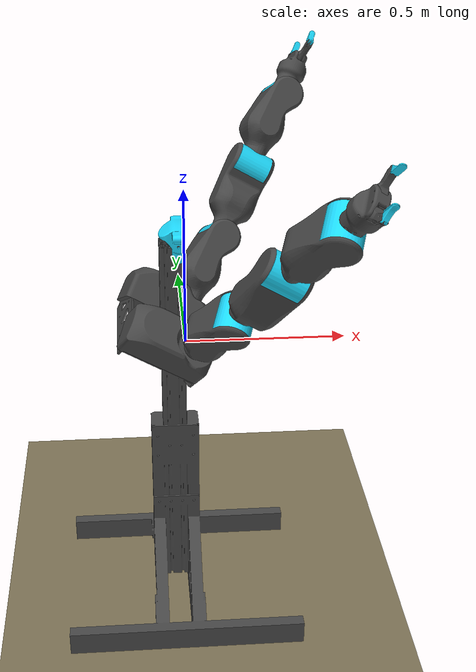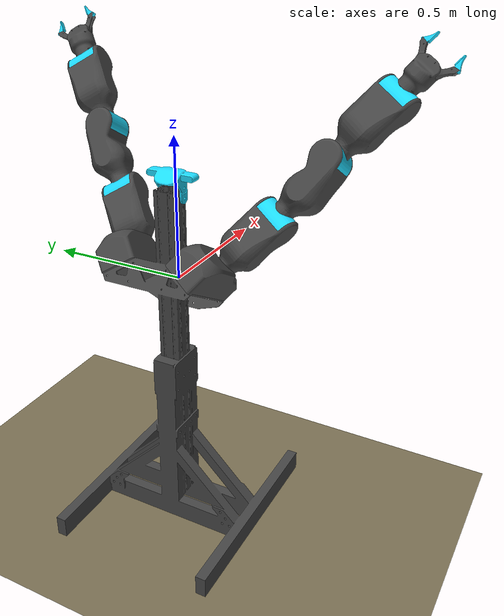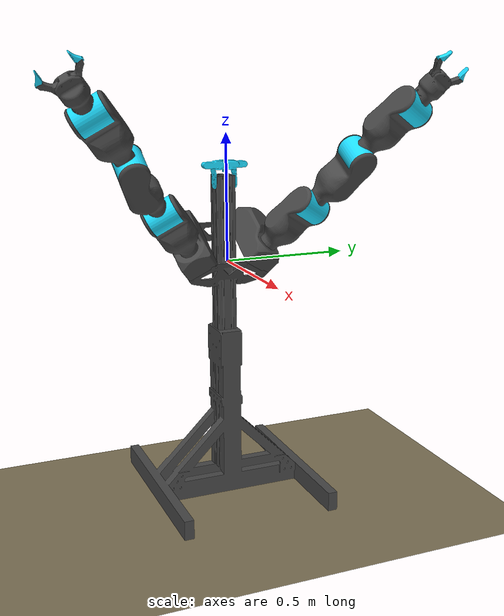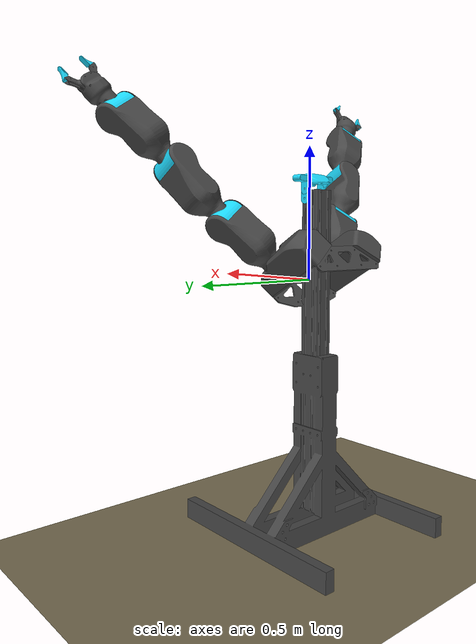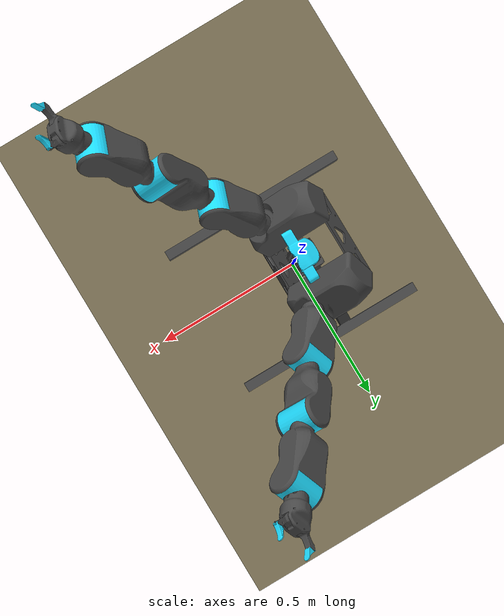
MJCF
<mujoco model="blue_full">
    <compiler angle="radian" meshdir="../../robot/meshes_blue_v2/"/>
    <option timestep="0.05" gravity="0 0 0" />
    <size njmax="500" nconmax="100" />

    <default>
        <joint armature="0.04" damping="1" limited="true" />
        <geom friction=".5 .1 .1" margin="0.002" condim="1" contype="0" conaffinity="0" />
    </default>

    <asset>
        <mesh name="robot_base_link" file="robot_base_link.STL" />
        <mesh name="arm_base_link_v2" file="arm_base_link_v2.STL" />
        <mesh name="roll_link_v2" file="roll_link_v2.STL" />
        <mesh name="lift_link_v2" file="lift_link_v2.STL" />
        <mesh name="hand_base_link" file="hand_base_link.STL" />
        <mesh name="finger_limb_link" file="finger_limb_link.STL" />
        <mesh name="finger_tip_link" file="finger_tip_link.STL" />
        <mesh name="camera_link" file="camera_link.STL" />

        <texture name="skybox" type="skybox" builtin="gradient" rgb1=".4 .6 .8" rgb2="0 0 0" width="1024" height="1024" mark="random" markrgb="1 1 1"/>
        <texture name="texplane" type="2d" builtin="checker" rgb1="0.5961 0.5647 0.4784" rgb2="0.3843 0.32941 0.19215" width="512" height="512" mark="cross" markrgb=".8 .8 .8"/>
        <material name="matplane" reflectance="0.3" texture="texplane" texrepeat="1 1" texuniform="true"/>
    </asset>

    <worldbody>
        <light directional="true" diffuse=".8 .8 .8" specular="0.1 0.1 0.1" pos="0 0 2.5" dir="0 0 -1" castshadow="false"/>
        <geom name="ground" type="plane" size="6 6 1" pos="0 0 -1." quat="1 0 0 0" material="matplane" condim="1"/>
        <body name="base_link" pos="0 0 0">
            <inertial pos="-0.0340721 -5.82248e-06 -0.701353" quat="0.999916 3.15548e-05 -0.0129229 -1.90294e-05" mass="16.2842" diaginertia="2.15017 1.86083 0.792594" />
            <geom type="mesh" rgba="0.2784 0.2784 0.2784 1" mesh="robot_base_link" />

            <body name="left_base_link" pos="-0.01409 0.11289 0" quat="-0.0778325 0.246839 0.290463 0.921219">
                <inertial pos="0.107964 -0.000118075 0.0740607" quat="-0.00144458 0.606987 0.000927747 0.79471" mass="3.45161" diaginertia="0.0175534 0.0157386 0.00730286" />
                <geom type="mesh" rgba="0.2784 0.2784 0.2784 1" mesh="arm_base_link_v2" />
                <body name="left_shoulder_roll_link" pos="0 0 0.083499" quat="0 1 0 0">
                    <inertial pos="0.00796478 6.88165e-07 -0.101495" quat="0.712797 -0.021542 -0.0203263 0.700745" mass="2.21396" diaginertia="0.00680774 0.00679994 0.00633497" />
                    <joint name="left_base_roll_joint" pos="0 0 0" axis="0 0 1" limited="true" range="-2.3412 3.3999" />
                    <geom type="mesh" rgba="0.2784 0.2784 0.2784 1" mesh="roll_link_v2" />
                    <body name="left_shoulder_lift_link" pos="-0.012 0 -0.232779" quat="0.707107 -0.707107 0 0">
                        <inertial pos="-1.3238e-05 0.00162984 3.71222e-05" quat="0.714714 -0.00266942 -0.00304239 0.699405" mass="0.415577" diaginertia="0.000846898 0.000835923 0.000571351" />
                        <joint name="left_shoulder_lift_joint" pos="0 0 0" axis="0 0 -1" limited="true" range="-2.2944 0" />
                        <geom type="mesh" rgba="0.116747 0.862745 1 1" mesh="lift_link_v2" />
                        <body name="left_elbow_roll_link" pos="0 0.0359532 0" quat="0.500704 0.500704 -0.499295 0.499295">
                            <inertial pos="0.00796478 6.88165e-07 -0.101495" quat="0.712797 -0.021542 -0.0203263 0.700745" mass="2.21396" diaginertia="0.00680774 0.00679994 0.00633497" />
                            <joint name="left_shoulder_roll_joint" pos="0 0 0" axis="0 0 1" limited="true" range="-2.6761 2.6761" />
                            <geom type="mesh" rgba="0.2784 0.2784 0.2784 1" mesh="roll_link_v2" />
                            <body name="left_elbow_lift_link" pos="-0.012 0 -0.232779" quat="0.707107 -0.707107 0 0">
                                <inertial pos="-1.3238e-05 0.00162984 3.71222e-05" quat="0.714714 -0.00266942 -0.00304239 0.699405" mass="0.415577" diaginertia="0.000846898 0.000835923 0.000571351" />
                                <joint name="left_elbow_lift_joint" pos="0 0 0" axis="0 0 -1" limited="true" range="-2.2944 0" />
                                <geom type="mesh" rgba="0.116747 0.862745 1 1" mesh="lift_link_v2" />
                                <body name="left_wrist_roll_link" pos="0 0.0359532 0" quat="0.500704 0.500704 0.499295 -0.499295">
                                    <inertial pos="0.00796478 6.88165e-07 -0.101495" quat="0.712797 -0.021542 -0.0203263 0.700745" mass="1.71368" diaginertia="0.00680774 0.00679994 0.00633497" />
                                    <joint name="left_elbow_roll_joint" pos="0 0 0" axis="0 0 1" limited="true" range="-2.6761 2.6761" />
                                    <geom type="mesh" rgba="0.2784 0.2784 0.2784 1" mesh="roll_link_v2" />
                                    <body name="left_wrist_lift_link" pos="-0.012 0 -0.232779" quat="0.707107 -0.707107 0 0">
                                        <inertial pos="-1.3238e-05 0.00162984 3.71222e-05" quat="0.714714 -0.00266942 -0.00304239 0.699405" mass="0.415577" diaginertia="0.000846898 0.000835923 0.000571351" />
                                        <joint name="left_wrist_lift_joint" pos="0 0 0" axis="0 0 -1" limited="true" range="-2.2944 0" />
                                        <geom type="mesh" rgba="0.116747 0.862745 1 1" mesh="lift_link_v2" />
                                        <body name="left_end_roll_link" pos="0 0.0701432 0" quat="0.707107 0.707107 0 0">
                                            <inertial pos="0.00526386 2.70692e-05 -0.0641638" quat="0.99991 0.000246685 0.0133803 0.00035395" mass="0.65711" diaginertia="0.00578835 0.00530224 0.0034223" />
                                            <joint name="left_wrist_roll_joint" pos="0 0 0" axis="0 0 1" limited="true" range="-2.6761 2.6761" />
                                            <geom type="mesh" rgba="0.2784 0.2784 0.2784 1" mesh="hand_base_link" />
                                            <body name="left_gripper_link" pos="0 0 -0.1" quat="0.535369 0.498747 0.498747 -0.464631">
                                                <inertial pos="-7.00549e-05 2.51272e-05 -0.0523671" quat="1 5.54202e-05 -0.000544908 -0.000762021" mass="0.00471098" diaginertia="0.000916889 0.000877269 0.000293332" />
                                            </body>
                                            <body name="left_r_finger_link" pos="0 0.030703 -0.071979" quat="0.631851 -0.317432 -0.631853 0.317432">
                                                <inertial pos="0.000467332 0.0122666 1.16453e-07" quat="0.705809 0.705807 -0.042877 -0.0427953" mass="0.0384621" diaginertia="1.95846e-05 1.92561e-05 5.02091e-06" />
                                                <geom type="mesh" rgba="0.2784 0.2784 0.2784 1" mesh="finger_limb_link" />
                                                <body name="left_r_finger_tip_link" pos="0 0.06 0" quat="0.222329 0.222329 -0.671246 -0.671244">
                                                    <inertial pos="0.000428096 -6.39629e-08 0.016281" quat="0.982245 -0.000139751 0.187603 -0.000716219" mass="0.00964245" diaginertia="1.96342e-06 1.95368e-06 4.76554e-07" />
                                                    <geom type="mesh" rgba="0.116747 0.862745 1 1" mesh="finger_tip_link" />
                                                </body>
                                            </body>
                                            <body name="left_l_finger_link" pos="0 -0.030703 -0.071979" quat="0.31743 -0.631852 0.317435 -0.631852">
                                                <inertial pos="0.000467332 0.0122666 1.16453e-07" quat="0.705809 0.705807 -0.042877 -0.0427953" mass="0.0384621" diaginertia="1.95846e-05 1.92561e-05 5.02091e-06" />
                                                <geom type="mesh" rgba="0.2784 0.2784 0.2784 1" mesh="finger_limb_link" />
                                                <body name="left_l_finger_tip_link" pos="0 0.06 0" quat="0.222329 0.222329 -0.671246 -0.671244">
                                                    <inertial pos="0.000428096 -6.39629e-08 0.016281" quat="0.982245 -0.000139751 0.187603 -0.000716219" mass="0.00964245" diaginertia="1.96342e-06 1.95368e-06 4.76554e-07" />
                                                    <geom type="mesh" rgba="0.116747 0.862745 1 1" mesh="finger_tip_link" />
                                                </body>
                                            </body>
                                            <body name="left_gripper_finger_link" pos="0 0 -0.18" quat="0.707107 -1.29867e-06 0.707107 -1.29867e-06">
                                                <inertial pos="0 0 -0.18" quat="0.707107 -1.29867e-06 0.707107 -1.29867e-06" mass="0" diaginertia="0 0 0" />
                                            </body>
                                        </body>
                                    </body>
                                    <body name="left_wrist_accel_link" pos="-0.0200083 -0.00051 -0.111067" quat="0.69759 0.69759 0.115618 -0.115618">
                                        <inertial pos="-0.0200083 -0.00051 -0.111067" quat="0.69759 0.69759 0.115618 -0.115618" mass="0" diaginertia="0 0 0" />
                                    </body>
                                </body>
                            </body>
                            <body name="left_elbow_accel_link" pos="-0.0200083 -0.00051 -0.111067" quat="0.69759 0.69759 0.115618 -0.115618">
                                <inertial pos="-0.0200083 -0.00051 -0.111067" quat="0.69759 0.69759 0.115618 -0.115618" mass="0" diaginertia="0 0 0" />
                            </body>
                        </body>
                    </body>
                    <body name="left_shoulder_accel_link" pos="-0.0200083 -0.00051 -0.111067" quat="0.69759 0.69759 0.115618 -0.115618">
                        <inertial pos="-0.0200083 -0.00051 -0.111067" quat="0.69759 0.69759 0.115618 -0.115618" mass="0" diaginertia="0 0 0" />
                    </body>
                </body>
            </body>
            <body name="right_base_link" pos="-0.01409 -0.11289 0" quat="0.0778258 0.246842 -0.290461 0.921219">
                <inertial pos="0.107964 -0.000118075 0.0740607" quat="-0.00144458 0.606987 0.000927747 0.79471" mass="3.45161" diaginertia="0.0175534 0.0157386 0.00730286" />
                <geom type="mesh" rgba="0.2784 0.2784 0.2784 1" mesh="arm_base_link_v2" />
                <body name="right_shoulder_roll_link" pos="0 0 0.083499" quat="0 1 0 0">
                    <inertial pos="0.00796478 6.88165e-07 -0.101495" quat="0.712797 -0.021542 -0.0203263 0.700745" mass="2.21396" diaginertia="0.00680774 0.00679994 0.00633497" />
                    <joint name="right_base_roll_joint" pos="0 0 0" axis="0 0 1" limited="true" range="-3.3999 2.3412" />
                    <geom type="mesh" rgba="0.2784 0.2784 0.2784 1" mesh="roll_link_v2" />
                    <body name="right_shoulder_lift_link" pos="-0.012 0 -0.232779" quat="0.707107 -0.707107 0 0">
                        <inertial pos="-1.3238e-05 0.00162984 3.71222e-05" quat="0.714714 -0.00266942 -0.00304239 0.699405" mass="0.415577" diaginertia="0.000846898 0.000835923 0.000571351" />
                        <joint name="right_shoulder_lift_joint" pos="0 0 0" axis="0 0 -1" limited="true" range="-2.2944 0" />
                        <geom type="mesh" rgba="0.116747 0.862745 1 1" mesh="lift_link_v2" />
                        <body name="right_elbow_roll_link" pos="0 0.0359532 0" quat="0.500704 0.500704 0.499295 -0.499295">
                            <inertial pos="0.00796478 6.88165e-07 -0.101495" quat="0.712797 -0.021542 -0.0203263 0.700745" mass="2.21396" diaginertia="0.00680774 0.00679994 0.00633497" />
                            <joint name="right_shoulder_roll_joint" pos="0 0 0" axis="0 0 1" limited="true" range="-2.6761 2.6761" />
                            <geom type="mesh" rgba="0.2784 0.2784 0.2784 1" mesh="roll_link_v2" />
                            <body name="right_elbow_lift_link" pos="-0.012 0 -0.232779" quat="0.707107 -0.707107 0 0">
                                <inertial pos="-1.3238e-05 0.00162984 3.71222e-05" quat="0.714714 -0.00266942 -0.00304239 0.699405" mass="0.415577" diaginertia="0.000846898 0.000835923 0.000571351" />
                                <joint name="right_elbow_lift_joint" pos="0 0 0" axis="0 0 -1" limited="true" range="-2.2944 0" />
                                <geom type="mesh" rgba="0.116747 0.862745 1 1" mesh="lift_link_v2" />
                                <body name="right_wrist_roll_link" pos="0 0.0359532 0" quat="0.500704 0.500704 -0.499295 0.499295">
                                    <inertial pos="0.00796478 6.88165e-07 -0.101495" quat="0.712797 -0.021542 -0.0203263 0.700745" mass="1.71368" diaginertia="0.00680774 0.00679994 0.00633497" />
                                    <joint name="right_elbow_roll_joint" pos="0 0 0" axis="0 0 1" limited="true" range="-2.6761 2.6761" />
                                    <geom type="mesh" rgba="0.2784 0.2784 0.2784 1" mesh="roll_link_v2" />
                                    <body name="right_wrist_lift_link" pos="-0.012 0 -0.232779" quat="0.707107 -0.707107 0 0">
                                        <inertial pos="-1.3238e-05 0.00162984 3.71222e-05" quat="0.714714 -0.00266942 -0.00304239 0.699405" mass="0.415577" diaginertia="0.000846898 0.000835923 0.000571351" />
                                        <joint name="right_wrist_lift_joint" pos="0 0 0" axis="0 0 -1" limited="true" range="-2.2944 0" />
                                        <geom type="mesh" rgba="0.116747 0.862745 1 1" mesh="lift_link_v2" />
                                        <body name="right_end_roll_link" pos="0 0.0701432 0" quat="0.707107 0.707107 0 0">
                                            <inertial pos="0.00526386 2.70692e-05 -0.0641638" quat="0.99991 0.000246685 0.0133803 0.00035395" mass="0.65711" diaginertia="0.00578835 0.00530224 0.0034223" />
                                            <joint name="right_wrist_roll_joint" pos="0 0 0" axis="0 0 1" limited="true" range="-2.6761 2.6761" />
                                            <geom type="mesh" rgba="0.2784 0.2784 0.2784 1" mesh="hand_base_link" />
                                            <body name="right_gripper_link" pos="0 0 -0.1" quat="0.535369 0.498747 0.498747 -0.464631">
                                                <inertial pos="-7.00549e-05 2.51272e-05 -0.0523671" quat="1 5.54202e-05 -0.000544908 -0.000762021" mass="0.00471098" diaginertia="0.000916889 0.000877269 0.000293332" />
                                            </body>
                                            <body name="right_r_finger_link" pos="0 0.030703 -0.071979" quat="0.631851 -0.317432 -0.631853 0.317432">
                                                <inertial pos="0.000467332 0.0122666 1.16453e-07" quat="0.705809 0.705807 -0.042877 -0.0427953" mass="0.0384621" diaginertia="1.95846e-05 1.92561e-05 5.02091e-06" />
                                                <geom type="mesh" rgba="0.2784 0.2784 0.2784 1" mesh="finger_limb_link" />
                                                <body name="right_r_finger_tip_link" pos="0 0.06 0" quat="0.222329 0.222329 -0.671246 -0.671244">
                                                    <inertial pos="0.000428096 -6.39629e-08 0.016281" quat="0.982245 -0.000139751 0.187603 -0.000716219" mass="0.00964245" diaginertia="1.96342e-06 1.95368e-06 4.76554e-07" />
                                                    <geom type="mesh" rgba="0.116747 0.862745 1 1" mesh="finger_tip_link" />
                                                </body>
                                            </body>
                                            <body name="right_l_finger_link" pos="0 -0.030703 -0.071979" quat="0.31743 -0.631852 0.317435 -0.631852">
                                                <inertial pos="0.000467332 0.0122666 1.16453e-07" quat="0.705809 0.705807 -0.042877 -0.0427953" mass="0.0384621" diaginertia="1.95846e-05 1.92561e-05 5.02091e-06" />
                                                <geom type="mesh" rgba="0.2784 0.2784 0.2784 1" mesh="finger_limb_link" />
                                                <body name="right_l_finger_tip_link" pos="0 0.06 0" quat="0.222329 0.222329 -0.671246 -0.671244">
                                                    <inertial pos="0.000428096 -6.39629e-08 0.016281" quat="0.982245 -0.000139751 0.187603 -0.000716219" mass="0.00964245" diaginertia="1.96342e-06 1.95368e-06 4.76554e-07" />
                                                    <geom type="mesh" rgba="0.116747 0.862745 1 1" mesh="finger_tip_link" />
                                                </body>
                                            </body>
                                            <body name="right_gripper_finger_link" pos="0 0 -0.18" quat="0.707107 -1.29867e-06 0.707107 -1.29867e-06">
                                                <inertial pos="0 0 -0.18" quat="0.707107 -1.29867e-06 0.707107 -1.29867e-06" mass="0" diaginertia="0 0 0" />
                                            </body>
                                        </body>
                                    </body>
                                    <body name="right_wrist_accel_link" pos="-0.0200083 -0.00051 -0.111067" quat="0.69759 0.69759 0.115618 -0.115618">
                                        <inertial pos="-0.0200083 -0.00051 -0.111067" quat="0.69759 0.69759 0.115618 -0.115618" mass="0" diaginertia="0 0 0" />
                                    </body>
                                </body>
                            </body>
                            <body name="right_elbow_accel_link" pos="-0.0200083 -0.00051 -0.111067" quat="0.69759 0.69759 0.115618 -0.115618">
                                <inertial pos="-0.0200083 -0.00051 -0.111067" quat="0.69759 0.69759 0.115618 -0.115618" mass="0" diaginertia="0 0 0" />
                            </body>
                        </body>
                    </body>
                    <body name="right_shoulder_accel_link" pos="-0.0200083 -0.00051 -0.111067" quat="0.69759 0.69759 0.115618 -0.115618">
                        <inertial pos="-0.0200083 -0.00051 -0.111067" quat="0.69759 0.69759 0.115618 -0.115618" mass="0" diaginertia="0 0 0" />
                    </body>
                </body>
            </body>
            <body name="camera_link" pos="-0.01905 0 0.303507" quat="0.707107 0.707107 0 0">
                <inertial pos="-0.00759217 0.0650724 0.000615586" quat="0.999769 -0.000313494 0.000866284 -0.0214595" mass="0.274759" diaginertia="0.000597521 0.000569066 0.000184847" />
                <geom type="mesh" rgba="0.116747 0.862745 1 1" mesh="camera_link" />
                <body name="camera_view_link" pos="0.01905 0.072775 0" quat="0.707107 0 -0.707107 0">
                    <inertial pos="0.01905 0.072775 0" quat="0.707107 0 -0.707107 0" mass="0" diaginertia="0 0 0" />
                </body>
            </body>
        </body>
    </worldbody>

    <actuator>
        <motor ctrlrange="-20.0 20.0" gear="1.0" joint="right_base_roll_joint" />
        <motor ctrlrange="-20.0 20.0" gear="1.0" joint="right_shoulder_lift_joint" />
        <motor ctrlrange="-20.0 20.0" gear="1.0" joint="right_shoulder_roll_joint" />
        <motor ctrlrange="-20.0 20.0" gear="1.0" joint="right_elbow_lift_joint" />
        <motor ctrlrange="-20.0 20.0" gear="1.0" joint="right_elbow_roll_joint" />
        <motor ctrlrange="-10.0 10.0" gear="1.0" joint="right_wrist_lift_joint" />
        <motor ctrlrange="-10.0 10.0" gear="1.0" joint="right_wrist_roll_joint" />

        <motor ctrlrange="-20.0 20.0" gear="1.0" joint="left_base_roll_joint" />
        <motor ctrlrange="-20.0 20.0" gear="1.0" joint="left_shoulder_lift_joint" />
        <motor ctrlrange="-20.0 20.0" gear="1.0" joint="left_shoulder_roll_joint" />
        <motor ctrlrange="-20.0 20.0" gear="1.0" joint="left_elbow_lift_joint" />
        <motor ctrlrange="-20.0 20.0" gear="1.0" joint="left_elbow_roll_joint" />
        <motor ctrlrange="-10.0 10.0" gear="1.0" joint="left_wrist_lift_joint" />
        <motor ctrlrange="-10.0 10.0" gear="1.0" joint="left_wrist_roll_joint" />
  </actuator>

</mujoco>
